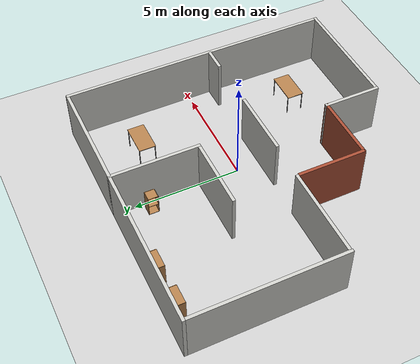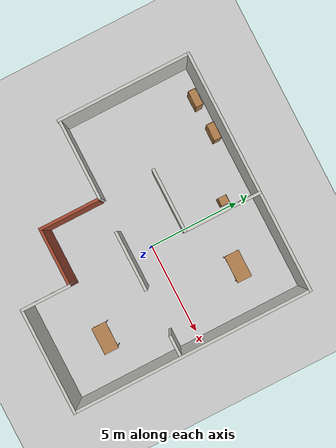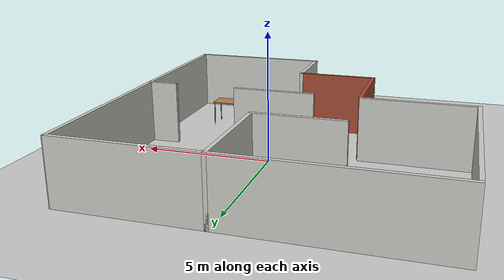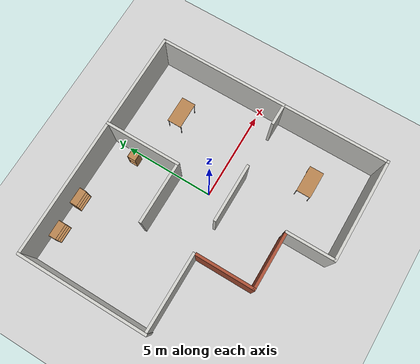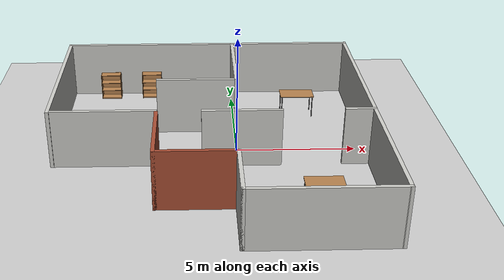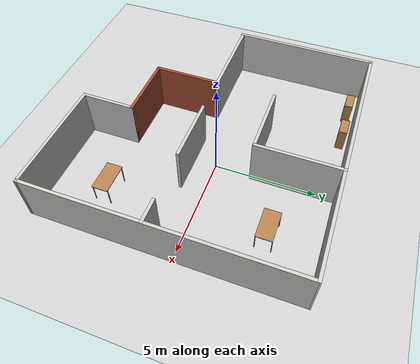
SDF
<sdf version="1.7">
 <world name="default">
  <light name="sun" type="directional">
   <pose>0 0 10 0 -0 0</pose>
   <diffuse>0.8 0.8 0.8 1</diffuse>
   <specular>0.2 0.2 0.2 1</specular>
   <attenuation>
    <range>1000</range>
    <constant>0.9</constant>
    <linear>0.01</linear>
    <quadratic>0.001</quadratic>
   </attenuation>
   <direction>-0.5 0.1 -0.9</direction>
   <spot><inner_angle>0</inner_angle><outer_angle>0</outer_angle><falloff>0</falloff></spot>
  </light>
  <model name="ground_plane">
   <static>1</static>
   <link name="link">
    <collision name="collision">
     <geometry><plane><normal>0 0 1</normal><size>100 100</size></plane></geometry>
     <surface>
      <contact><collide_bitmask>65535</collide_bitmask></contact>
      <friction><ode><mu>100</mu><mu2>50</mu2></ode></friction>
     </surface>
    </collision>
    <visual name="visual">
     <cast_shadows>0</cast_shadows>
     <geometry><plane><normal>0 0 1</normal><size>100 100</size></plane></geometry>
     <material>
      <script><uri>file://media/materials/scripts/gazebo.material</uri><name>Gazebo/Grey</name></script>
     </material>
    </visual>
   </link>
  </model>
  <gravity>0 0 -9.8</gravity>
  <magnetic_field>6e-06 2.3e-05 -4.2e-05</magnetic_field>
  <atmosphere type="adiabatic"/>
  <physics type="ode">
   <max_step_size>0.001</max_step_size>
   <real_time_factor>1</real_time_factor>
   <real_time_update_rate>1000</real_time_update_rate>
  </physics>
  <scene><ambient>0.4 0.4 0.4 1</ambient><background>0.7 0.7 0.7 1</background><shadows>1</shadows></scene>
  <spherical_coordinates>
   <surface_model>EARTH_WGS84</surface_model>
   <latitude_deg>0</latitude_deg>
   <longitude_deg>0</longitude_deg>
   <elevation>0</elevation>
   <heading_deg>0</heading_deg>
  </spherical_coordinates>
  <light name="user_point_light_0" type="point">
   <pose>-5.02294 3.06272 1 0 -0 0</pose>
   <diffuse>0.5 0.5 0.5 1</diffuse>
   <specular>0.1 0.1 0.1 1</specular>
   <attenuation>
    <range>20</range>
    <constant>0.5</constant>
    <linear>0.01</linear>
    <quadratic>0.001</quadratic>
   </attenuation>
   <cast_shadows>0</cast_shadows>
   <direction>0 0 -1</direction>
   <spot><inner_angle>0</inner_angle><outer_angle>0</outer_angle><falloff>0</falloff></spot>
  </light>
  <light name="user_point_light_1" type="point">
   <pose>2.858 2.69851 1 0 -0 0</pose>
   <diffuse>0.5 0.5 0.5 1</diffuse>
   <specular>0.1 0.1 0.1 1</specular>
   <attenuation>
    <range>20</range>
    <constant>0.5</constant>
    <linear>0.01</linear>
    <quadratic>0.001</quadratic>
   </attenuation>
   <cast_shadows>0</cast_shadows>
   <direction>0 0 -1</direction>
   <spot><inner_angle>0</inner_angle><outer_angle>0</outer_angle><falloff>0</falloff></spot>
  </light>
  <light name="user_point_light_2" type="point">
   <pose>-1.99851 -2.16585 1 0 -0 0</pose>
   <diffuse>0.5 0.5 0.5 1</diffuse>
   <specular>0.1 0.1 0.1 1</specular>
   <attenuation>
    <range>20</range>
    <constant>0.5</constant>
    <linear>0.01</linear>
    <quadratic>0.001</quadratic>
   </attenuation>
   <cast_shadows>0</cast_shadows>
   <direction>0 0 -1</direction>
   <spot><inner_angle>0</inner_angle><outer_angle>0</outer_angle><falloff>0</falloff></spot>
  </light>
  <light name="user_point_light_3" type="point">
   <pose>3.04235 -3.95591 1 0 -0 0</pose>
   <diffuse>0.5 0.5 0.5 1</diffuse>
   <specular>0.1 0.1 0.1 1</specular>
   <attenuation>
    <range>20</range>
    <constant>0.5</constant>
    <linear>0.01</linear>
    <quadratic>0.001</quadratic>
   </attenuation>
   <cast_shadows>0</cast_shadows>
   <direction>0 0 -1</direction>
   <spot><inner_angle>0</inner_angle><outer_angle>0</outer_angle><falloff>0</falloff></spot>
  </light>
  <model name="bookshelf">
   <static>1</static>
   <link name="link">
    <inertial><mass>1</mass></inertial>
    <collision name="back">
     <pose>0 0.005 0.6 0 -0 0</pose>
     <geometry><box><size>0.9 0.01 1.2</size></box></geometry>
    </collision>
    <visual name="visual1">
     <pose>0 0.005 0.6 0 -0 0</pose>
     <geometry><box><size>0.9 0.01 1.2</size></box></geometry>
     <material>
      <script><uri>file://media/materials/scripts/gazebo.material</uri><name>Gazebo/Wood</name></script>
     </material>
    </visual>
    <collision name="left_side">
     <pose>0.45 -0.195 0.6 0 -0 0</pose>
     <geometry><box><size>0.02 0.4 1.2</size></box></geometry>
    </collision>
    <visual name="visual2">
     <pose>0.45 -0.195 0.6 0 -0 0</pose>
     <geometry><box><size>0.02 0.4 1.2</size></box></geometry>
     <material>
      <script><uri>file://media/materials/scripts/gazebo.material</uri><name>Gazebo/Wood</name></script>
     </material>
    </visual>
    <collision name="right_side">
     <pose>-0.45 -0.195 0.6 0 -0 0</pose>
     <geometry><box><size>0.02 0.4 1.2</size></box></geometry>
    </collision>
    <visual name="visual3">
     <pose>-0.45 -0.195 0.6 0 -0 0</pose>
     <geometry><box><size>0.02 0.4 1.2</size></box></geometry>
     <material>
      <script><uri>file://media/materials/scripts/gazebo.material</uri><name>Gazebo/Wood</name></script>
     </material>
    </visual>
    <collision name="bottom">
     <pose>0 -0.195 0.03 0 -0 0</pose>
     <geometry><box><size>0.88 0.4 0.06</size></box></geometry>
    </collision>
    <visual name="visual4">
     <pose>0 -0.195 0.03 0 -0 0</pose>
     <geometry><box><size>0.88 0.4 0.06</size></box></geometry>
     <material>
      <script><uri>file://media/materials/scripts/gazebo.material</uri><name>Gazebo/Wood</name></script>
     </material>
    </visual>
    <collision name="top">
     <pose>0 -0.195 1.19 0 -0 0</pose>
     <geometry><box><size>0.88 0.4 0.02</size></box></geometry>
    </collision>
    <visual name="visual5">
     <pose>0 -0.195 1.19 0 -0 0</pose>
     <geometry><box><size>0.88 0.4 0.02</size></box></geometry>
     <material>
      <script><uri>file://media/materials/scripts/gazebo.material</uri><name>Gazebo/Wood</name></script>
     </material>
    </visual>
    <collision name="low_shelf">
     <pose>0 -0.195 0.43 0 -0 0</pose>
     <geometry><box><size>0.88 0.4 0.02</size></box></geometry>
    </collision>
    <visual name="visual6">
     <pose>0 -0.195 0.43 0 -0 0</pose>
     <geometry><box><size>0.88 0.4 0.02</size></box></geometry>
     <material>
      <script><uri>file://media/materials/scripts/gazebo.material</uri><name>Gazebo/Wood</name></script>
     </material>
    </visual>
    <collision name="high_shelf">
     <pose>0 -0.195 0.8 0 -0 0</pose>
     <geometry><box><size>0.88 0.4 0.02</size></box></geometry>
    </collision>
    <visual name="visual7">
     <pose>0 -0.195 0.8 0 -0 0</pose>
     <geometry><box><size>0.88 0.4 0.02</size></box></geometry>
     <material>
      <script><uri>file://media/materials/scripts/gazebo.material</uri><name>Gazebo/Wood</name></script>
     </material>
    </visual>
   </link>
   <pose>-5.69565 5.6431 0 0 -0 0</pose>
  </model>
  <model name="bookshelf_clone">
   <static>1</static>
   <link name="link">
    <inertial><mass>1</mass></inertial>
    <collision name="back">
     <pose>0 0.005 0.6 0 -0 0</pose>
     <geometry><box><size>0.9 0.01 1.2</size></box></geometry>
    </collision>
    <visual name="visual1">
     <pose>0 0.005 0.6 0 -0 0</pose>
     <geometry><box><size>0.9 0.01 1.2</size></box></geometry>
     <material>
      <script><uri>file://media/materials/scripts/gazebo.material</uri><name>Gazebo/Wood</name></script>
     </material>
    </visual>
    <collision name="left_side">
     <pose>0.45 -0.195 0.6 0 -0 0</pose>
     <geometry><box><size>0.02 0.4 1.2</size></box></geometry>
    </collision>
    <visual name="visual2">
     <pose>0.45 -0.195 0.6 0 -0 0</pose>
     <geometry><box><size>0.02 0.4 1.2</size></box></geometry>
     <material>
      <script><uri>file://media/materials/scripts/gazebo.material</uri><name>Gazebo/Wood</name></script>
     </material>
    </visual>
    <collision name="right_side">
     <pose>-0.45 -0.195 0.6 0 -0 0</pose>
     <geometry><box><size>0.02 0.4 1.2</size></box></geometry>
    </collision>
    <visual name="visual3">
     <pose>-0.45 -0.195 0.6 0 -0 0</pose>
     <geometry><box><size>0.02 0.4 1.2</size></box></geometry>
     <material>
      <script><uri>file://media/materials/scripts/gazebo.material</uri><name>Gazebo/Wood</name></script>
     </material>
    </visual>
    <collision name="bottom">
     <pose>0 -0.195 0.03 0 -0 0</pose>
     <geometry><box><size>0.88 0.4 0.06</size></box></geometry>
    </collision>
    <visual name="visual4">
     <pose>0 -0.195 0.03 0 -0 0</pose>
     <geometry><box><size>0.88 0.4 0.06</size></box></geometry>
     <material>
      <script><uri>file://media/materials/scripts/gazebo.material</uri><name>Gazebo/Wood</name></script>
     </material>
    </visual>
    <collision name="top">
     <pose>0 -0.195 1.19 0 -0 0</pose>
     <geometry><box><size>0.88 0.4 0.02</size></box></geometry>
    </collision>
    <visual name="visual5">
     <pose>0 -0.195 1.19 0 -0 0</pose>
     <geometry><box><size>0.88 0.4 0.02</size></box></geometry>
     <material>
      <script><uri>file://media/materials/scripts/gazebo.material</uri><name>Gazebo/Wood</name></script>
     </material>
    </visual>
    <collision name="low_shelf">
     <pose>0 -0.195 0.43 0 -0 0</pose>
     <geometry><box><size>0.88 0.4 0.02</size></box></geometry>
    </collision>
    <visual name="visual6">
     <pose>0 -0.195 0.43 0 -0 0</pose>
     <geometry><box><size>0.88 0.4 0.02</size></box></geometry>
     <material>
      <script><uri>file://media/materials/scripts/gazebo.material</uri><name>Gazebo/Wood</name></script>
     </material>
    </visual>
    <collision name="high_shelf">
     <pose>0 -0.195 0.8 0 -0 0</pose>
     <geometry><box><size>0.88 0.4 0.02</size></box></geometry>
    </collision>
    <visual name="visual7">
     <pose>0 -0.195 0.8 0 -0 0</pose>
     <geometry><box><size>0.88 0.4 0.02</size></box></geometry>
     <material>
      <script><uri>file://media/materials/scripts/gazebo.material</uri><name>Gazebo/Wood</name></script>
     </material>
    </visual>
   </link>
   <pose>-3.76887 5.69778 0 0 -0 0</pose>
  </model>
  <model name="cabinet">
   <static>1</static>
   <link name="cabinet_bottom_plate">
    <inertial>
     <pose>0 0 -1 0 -0 0</pose>
     <inertia><ixx>2.05</ixx><ixy>0</ixy><ixz>0</ixz><iyy>2.05</iyy><iyz>0</iyz><izz>2.05</izz></inertia>
     <mass>25</mass>
    </inertial>
    <collision name="cabinet_bottom_plate_geom">
     <pose>0 0 0.01 0 -0 0</pose>
     <geometry><box><size>0.45 0.45 0.02</size></box></geometry>
    </collision>
    <visual name="cabinet_bottom_plate_geom_visual">
     <pose>0 0 0.01 0 -0 0</pose>
     <geometry><box><size>0.45 0.45 0.02</size></box></geometry>
     <material>
      <script><uri>file://media/materials/scripts/gazebo.material</uri><name>Gazebo/Wood</name></script>
     </material>
    </visual>
    <collision name="cabinet_bottom_plate_geom_cabinet_back_plate">
     <pose>0.235 0 0.51 0 -0 0</pose>
     <geometry><box><size>0.02 0.45 1.02</size></box></geometry>
    </collision>
    <visual name="cabinet_bottom_plate_geom_cabinet_back_plate_visual">
     <pose>0.235 0 0.51 0 -0 0</pose>
     <geometry><box><size>0.02 0.45 1.02</size></box></geometry>
     <material>
      <script><uri>file://media/materials/scripts/gazebo.material</uri><name>Gazebo/Wood</name></script>
     </material>
    </visual>
    <collision name="cabinet_bottom_plate_geom_cabinet_left_plate">
     <pose>0 0.235 0.51 0 -0 0</pose>
     <geometry><box><size>0.45 0.02 1.02</size></box></geometry>
    </collision>
    <visual name="cabinet_bottom_plate_geom_cabinet_left_plate_visual">
     <pose>0 0.235 0.51 0 -0 0</pose>
     <geometry><box><size>0.45 0.02 1.02</size></box></geometry>
     <material>
      <script><uri>file://media/materials/scripts/gazebo.material</uri><name>Gazebo/Wood</name></script>
     </material>
    </visual>
    <collision name="cabinet_bottom_plate_geom_cabinet_middle_plate">
     <pose>0 0 0.51 0 -0 0</pose>
     <geometry><box><size>0.45 0.45 0.02</size></box></geometry>
    </collision>
    <visual name="cabinet_bottom_plate_geom_cabinet_middle_plate_visual">
     <pose>0 0 0.51 0 -0 0</pose>
     <geometry><box><size>0.45 0.45 0.02</size></box></geometry>
     <material>
      <script><uri>file://media/materials/scripts/gazebo.material</uri><name>Gazebo/Wood</name></script>
     </material>
    </visual>
    <collision name="cabinet_bottom_plate_geom_cabinet_right_plate">
     <pose>0 -0.235 0.51 0 -0 0</pose>
     <geometry><box><size>0.45 0.02 1.02</size></box></geometry>
    </collision>
    <visual name="cabinet_bottom_plate_geom_cabinet_right_plate_visual">
     <pose>0 -0.235 0.51 0 -0 0</pose>
     <geometry><box><size>0.45 0.02 1.02</size></box></geometry>
     <material>
      <script><uri>file://media/materials/scripts/gazebo.material</uri><name>Gazebo/Wood</name></script>
     </material>
    </visual>
    <collision name="cabinet_bottom_plate_geom_cabinet_top_plate">
     <pose>0 0 1.01 0 -0 0</pose>
     <geometry><box><size>0.45 0.45 0.02</size></box></geometry>
    </collision>
    <visual name="cabinet_bottom_plate_geom_cabinet_top_plate_visual">
     <pose>0 0 1.01 0 -0 0</pose>
     <geometry><box><size>0.45 0.45 0.02</size></box></geometry>
     <material>
      <script><uri>file://media/materials/scripts/gazebo.material</uri><name>Gazebo/Wood</name></script>
     </material>
    </visual>
   </link>
   <pose>-0.422398 4.35117 0 0 -0 0</pose>
  </model>
  <model name="table">
   <static>1</static>
   <link name="link">
    <collision name="surface">
     <pose>0 0 1 0 -0 0</pose>
     <geometry><box><size>1.5 0.8 0.03</size></box></geometry>
     <surface><friction><ode><mu>0.6</mu><mu2>0.6</mu2></ode></friction></surface>
    </collision>
    <visual name="visual1">
     <pose>0 0 1 0 -0 0</pose>
     <geometry><box><size>1.5 0.8 0.03</size></box></geometry>
     <material>
      <script><uri>file://media/materials/scripts/gazebo.material</uri><name>Gazebo/Wood</name></script>
     </material>
    </visual>
    <collision name="front_left_leg">
     <pose>0.68 0.38 0.5 0 -0 0</pose>
     <geometry><cylinder><radius>0.02</radius><length>1</length></cylinder></geometry>
    </collision>
    <visual name="front_left_leg">
     <pose>0.68 0.38 0.5 0 -0 0</pose>
     <geometry><cylinder><radius>0.02</radius><length>1</length></cylinder></geometry>
     <material>
      <script><uri>file://media/materials/scripts/gazebo.material</uri><name>Gazebo/Grey</name></script>
     </material>
    </visual>
    <collision name="front_right_leg">
     <pose>0.68 -0.38 0.5 0 -0 0</pose>
     <geometry><cylinder><radius>0.02</radius><length>1</length></cylinder></geometry>
    </collision>
    <visual name="front_right_leg">
     <pose>0.68 -0.38 0.5 0 -0 0</pose>
     <geometry><cylinder><radius>0.02</radius><length>1</length></cylinder></geometry>
     <material>
      <script><uri>file://media/materials/scripts/gazebo.material</uri><name>Gazebo/Grey</name></script>
     </material>
    </visual>
    <collision name="back_right_leg">
     <pose>-0.68 -0.38 0.5 0 -0 0</pose>
     <geometry><cylinder><radius>0.02</radius><length>1</length></cylinder></geometry>
    </collision>
    <visual name="back_right_leg">
     <pose>-0.68 -0.38 0.5 0 -0 0</pose>
     <geometry><cylinder><radius>0.02</radius><length>1</length></cylinder></geometry>
     <material>
      <script><uri>file://media/materials/scripts/gazebo.material</uri><name>Gazebo/Grey</name></script>
     </material>
    </visual>
    <collision name="back_left_leg">
     <pose>-0.68 0.38 0.5 0 -0 0</pose>
     <geometry><cylinder><radius>0.02</radius><length>1</length></cylinder></geometry>
    </collision>
    <visual name="back_left_leg">
     <pose>-0.68 0.38 0.5 0 -0 0</pose>
     <geometry><cylinder><radius>0.02</radius><length>1</length></cylinder></geometry>
     <material>
      <script><uri>file://media/materials/scripts/gazebo.material</uri><name>Gazebo/Grey</name></script>
     </material>
    </visual>
   </link>
   <pose>3.04943 -4.2417 0 0 -0 0</pose>
  </model>
  <model name="table_0">
   <static>1</static>
   <link name="link">
    <collision name="surface">
     <pose>0 0 1 0 -0 0</pose>
     <geometry><box><size>1.5 0.8 0.03</size></box></geometry>
     <surface><friction><ode><mu>0.6</mu><mu2>0.6</mu2></ode></friction></surface>
    </collision>
    <visual name="visual1">
     <pose>0 0 1 0 -0 0</pose>
     <geometry><box><size>1.5 0.8 0.03</size></box></geometry>
     <material>
      <script><uri>file://media/materials/scripts/gazebo.material</uri><name>Gazebo/Wood</name></script>
     </material>
    </visual>
    <collision name="front_left_leg">
     <pose>0.68 0.38 0.5 0 -0 0</pose>
     <geometry><cylinder><radius>0.02</radius><length>1</length></cylinder></geometry>
    </collision>
    <visual name="front_left_leg">
     <pose>0.68 0.38 0.5 0 -0 0</pose>
     <geometry><cylinder><radius>0.02</radius><length>1</length></cylinder></geometry>
     <material>
      <script><uri>file://media/materials/scripts/gazebo.material</uri><name>Gazebo/Grey</name></script>
     </material>
    </visual>
    <collision name="front_right_leg">
     <pose>0.68 -0.38 0.5 0 -0 0</pose>
     <geometry><cylinder><radius>0.02</radius><length>1</length></cylinder></geometry>
    </collision>
    <visual name="front_right_leg">
     <pose>0.68 -0.38 0.5 0 -0 0</pose>
     <geometry><cylinder><radius>0.02</radius><length>1</length></cylinder></geometry>
     <material>
      <script><uri>file://media/materials/scripts/gazebo.material</uri><name>Gazebo/Grey</name></script>
     </material>
    </visual>
    <collision name="back_right_leg">
     <pose>-0.68 -0.38 0.5 0 -0 0</pose>
     <geometry><cylinder><radius>0.02</radius><length>1</length></cylinder></geometry>
    </collision>
    <visual name="back_right_leg">
     <pose>-0.68 -0.38 0.5 0 -0 0</pose>
     <geometry><cylinder><radius>0.02</radius><length>1</length></cylinder></geometry>
     <material>
      <script><uri>file://media/materials/scripts/gazebo.material</uri><name>Gazebo/Grey</name></script>
     </material>
    </visual>
    <collision name="back_left_leg">
     <pose>-0.68 0.38 0.5 0 -0 0</pose>
     <geometry><cylinder><radius>0.02</radius><length>1</length></cylinder></geometry>
    </collision>
    <visual name="back_left_leg">
     <pose>-0.68 0.38 0.5 0 -0 0</pose>
     <geometry><cylinder><radius>0.02</radius><length>1</length></cylinder></geometry>
     <material>
      <script><uri>file://media/materials/scripts/gazebo.material</uri><name>Gazebo/Grey</name></script>
     </material>
    </visual>
   </link>
   <pose>2.90183 3.46121 0 0 -0 0</pose>
  </model>
  <model name="robot_world">
   <link name="Wall_0">
    <pose>-0.568104 2.36 0 0 -0 0</pose>
    <visual name="Wall_0_Visual">
     <pose>0 0 1.25 0 -0 0</pose>
     <geometry><box><size>3.5 0.15 2.5</size></box></geometry>
     <material>
      <script><uri>file://media/materials/scripts/gazebo.material</uri><name>Gazebo/CeilingTiled</name></script>
      <ambient>0.760784 0.662745 0.627451 1</ambient>
      <shader type="pixel"/>
     </material>
     <meta><layer>0</layer></meta>
    </visual>
    <collision name="Wall_0_Collision">
     <pose>0 0 1.25 0 -0 0</pose>
     <geometry><box><size>3.5 0.15 2.5</size></box></geometry>
     <surface>
      <friction>
       <ode><mu>1</mu><mu2>1</mu2><fdir1>0 0 0</fdir1><slip1>0</slip1><slip2>0</slip2></ode>
       <torsional>
        <coefficient>1</coefficient>
        <patch_radius>0</patch_radius>
        <surface_radius>0</surface_radius>
        <use_patch_radius>1</use_patch_radius>
        <ode><slip>0</slip></ode>
       </torsional>
      </friction>
      <bounce><restitution_coefficient>0</restitution_coefficient><threshold>1e+06</threshold></bounce>
      <contact>
       <collide_without_contact>0</collide_without_contact>
       <collide_without_contact_bitmask>1</collide_without_contact_bitmask>
       <collide_bitmask>1</collide_bitmask>
       <ode>
        <soft_cfm>0</soft_cfm>
        <soft_erp>0.2</soft_erp>
        <kp>1e+13</kp>
        <kd>1</kd>
        <max_vel>0.01</max_vel>
        <min_depth>0</min_depth>
       </ode>
       <bullet>
        <split_impulse>1</split_impulse>
        <split_impulse_penetration_threshold>-0.01</split_impulse_penetration_threshold>
        <soft_cfm>0</soft_cfm>
        <soft_erp>0.2</soft_erp>
        <kp>1e+13</kp>
        <kd>1</kd>
       </bullet>
      </contact>
     </surface>
    </collision>
   </link>
   <link name="Wall_1">
    <pose>1.1069 4.41 0 0 -0 1.5708</pose>
    <visual name="Wall_1_Visual">
     <pose>0 0 1.25 0 -0 0</pose>
     <geometry><box><size>4.25 0.15 2.5</size></box></geometry>
     <material>
      <script><uri>file://media/materials/scripts/gazebo.material</uri><name>Gazebo/CeilingTiled</name></script>
      <ambient>0.760784 0.662745 0.627451 1</ambient>
      <shader type="pixel"/>
     </material>
     <meta><layer>0</layer></meta>
    </visual>
    <collision name="Wall_1_Collision">
     <pose>0 0 1.25 0 -0 0</pose>
     <geometry><box><size>4.25 0.15 2.5</size></box></geometry>
     <surface>
      <friction>
       <ode><mu>1</mu><mu2>1</mu2><fdir1>0 0 0</fdir1><slip1>0</slip1><slip2>0</slip2></ode>
       <torsional>
        <coefficient>1</coefficient>
        <patch_radius>0</patch_radius>
        <surface_radius>0</surface_radius>
        <use_patch_radius>1</use_patch_radius>
        <ode><slip>0</slip></ode>
       </torsional>
      </friction>
      <bounce><restitution_coefficient>0</restitution_coefficient><threshold>1e+06</threshold></bounce>
      <contact>
       <collide_without_contact>0</collide_without_contact>
       <collide_without_contact_bitmask>1</collide_without_contact_bitmask>
       <collide_bitmask>1</collide_bitmask>
       <ode>
        <soft_cfm>0</soft_cfm>
        <soft_erp>0.2</soft_erp>
        <kp>1e+13</kp>
        <kd>1</kd>
        <max_vel>0.01</max_vel>
        <min_depth>0</min_depth>
       </ode>
       <bullet>
        <split_impulse>1</split_impulse>
        <split_impulse_penetration_threshold>-0.01</split_impulse_penetration_threshold>
        <soft_cfm>0</soft_cfm>
        <soft_erp>0.2</soft_erp>
        <kp>1e+13</kp>
        <kd>1</kd>
       </bullet>
      </contact>
     </surface>
    </collision>
   </link>
   <link name="Wall_10">
    <pose>0.892896 -5.16 0 0 0 -1.5708</pose>
    <visual name="Wall_10_Visual">
     <pose>0 0 1.25 0 -0 0</pose>
     <geometry><box><size>2.75 0.15 2.5</size></box></geometry>
     <material>
      <script><uri>file://media/materials/scripts/gazebo.material</uri><name>Gazebo/CeilingTiled</name></script>
      <ambient>0.760784 0.662745 0.627451 1</ambient>
      <shader type="pixel"/>
     </material>
     <meta><layer>0</layer></meta>
    </visual>
    <collision name="Wall_10_Collision">
     <pose>0 0 1.25 0 -0 0</pose>
     <geometry><box><size>2.75 0.15 2.5</size></box></geometry>
     <surface>
      <friction>
       <ode><mu>1</mu><mu2>1</mu2><fdir1>0 0 0</fdir1><slip1>0</slip1><slip2>0</slip2></ode>
       <torsional>
        <coefficient>1</coefficient>
        <patch_radius>0</patch_radius>
        <surface_radius>0</surface_radius>
        <use_patch_radius>1</use_patch_radius>
        <ode><slip>0</slip></ode>
       </torsional>
      </friction>
      <bounce><restitution_coefficient>0</restitution_coefficient><threshold>1e+06</threshold></bounce>
      <contact>
       <collide_without_contact>0</collide_without_contact>
       <collide_without_contact_bitmask>1</collide_without_contact_bitmask>
       <collide_bitmask>1</collide_bitmask>
       <ode>
        <soft_cfm>0</soft_cfm>
        <soft_erp>0.2</soft_erp>
        <kp>1e+13</kp>
        <kd>1</kd>
        <max_vel>0.01</max_vel>
        <min_depth>0</min_depth>
       </ode>
       <bullet>
        <split_impulse>1</split_impulse>
        <split_impulse_penetration_threshold>-0.01</split_impulse_penetration_threshold>
        <soft_cfm>0</soft_cfm>
        <soft_erp>0.2</soft_erp>
        <kp>1e+13</kp>
        <kd>1</kd>
       </bullet>
      </contact>
     </surface>
    </collision>
   </link>
   <link name="Wall_11">
    <pose>3.6929 -6.46 0 0 -0 0</pose>
    <visual name="Wall_11_Visual">
     <pose>0 0 1.25 0 -0 0</pose>
     <geometry><box><size>5.75 0.15 2.5</size></box></geometry>
     <material>
      <script><uri>file://media/materials/scripts/gazebo.material</uri><name>Gazebo/CeilingTiled</name></script>
      <ambient>0.760784 0.662745 0.627451 1</ambient>
      <shader type="pixel"/>
     </material>
     <meta><layer>0</layer></meta>
    </visual>
    <collision name="Wall_11_Collision">
     <pose>0 0 1.25 0 -0 0</pose>
     <geometry><box><size>5.75 0.15 2.5</size></box></geometry>
     <surface>
      <friction>
       <ode><mu>1</mu><mu2>1</mu2><fdir1>0 0 0</fdir1><slip1>0</slip1><slip2>0</slip2></ode>
       <torsional>
        <coefficient>1</coefficient>
        <patch_radius>0</patch_radius>
        <surface_radius>0</surface_radius>
        <use_patch_radius>1</use_patch_radius>
        <ode><slip>0</slip></ode>
       </torsional>
      </friction>
      <bounce><restitution_coefficient>0</restitution_coefficient><threshold>1e+06</threshold></bounce>
      <contact>
       <collide_without_contact>0</collide_without_contact>
       <collide_without_contact_bitmask>1</collide_without_contact_bitmask>
       <collide_bitmask>1</collide_bitmask>
       <ode>
        <soft_cfm>0</soft_cfm>
        <soft_erp>0.2</soft_erp>
        <kp>1e+13</kp>
        <kd>1</kd>
        <max_vel>0.01</max_vel>
        <min_depth>0</min_depth>
       </ode>
       <bullet>
        <split_impulse>1</split_impulse>
        <split_impulse_penetration_threshold>-0.01</split_impulse_penetration_threshold>
        <soft_cfm>0</soft_cfm>
        <soft_erp>0.2</soft_erp>
        <kp>1e+13</kp>
        <kd>1</kd>
       </bullet>
      </contact>
     </surface>
    </collision>
   </link>
   <link name="Wall_14">
    <pose>3.7819 6.46 0 0 -0 0</pose>
    <visual name="Wall_14_Visual">
     <pose>0 0 1.25 0 -0 0</pose>
     <geometry><box><size>5.5 0.15 2.5</size></box></geometry>
     <material>
      <script><uri>file://media/materials/scripts/gazebo.material</uri><name>Gazebo/CeilingTiled</name></script>
      <ambient>0.760784 0.662745 0.627451 1</ambient>
      <shader type="pixel"/>
     </material>
     <meta><layer>0</layer></meta>
    </visual>
    <collision name="Wall_14_Collision">
     <pose>0 0 1.25 0 -0 0</pose>
     <geometry><box><size>5.5 0.15 2.5</size></box></geometry>
     <surface>
      <friction>
       <ode><mu>1</mu><mu2>1</mu2><fdir1>0 0 0</fdir1><slip1>0</slip1><slip2>0</slip2></ode>
       <torsional>
        <coefficient>1</coefficient>
        <patch_radius>0</patch_radius>
        <surface_radius>0</surface_radius>
        <use_patch_radius>1</use_patch_radius>
        <ode><slip>0</slip></ode>
       </torsional>
      </friction>
      <bounce><restitution_coefficient>0</restitution_coefficient><threshold>1e+06</threshold></bounce>
      <contact>
       <collide_without_contact>0</collide_without_contact>
       <collide_without_contact_bitmask>1</collide_without_contact_bitmask>
       <collide_bitmask>1</collide_bitmask>
       <ode>
        <soft_cfm>0</soft_cfm>
        <soft_erp>0.2</soft_erp>
        <kp>1e+13</kp>
        <kd>1</kd>
        <max_vel>0.01</max_vel>
        <min_depth>0</min_depth>
       </ode>
       <bullet>
        <split_impulse>1</split_impulse>
        <split_impulse_penetration_threshold>-0.01</split_impulse_penetration_threshold>
        <soft_cfm>0</soft_cfm>
        <soft_erp>0.2</soft_erp>
        <kp>1e+13</kp>
        <kd>1</kd>
       </bullet>
      </contact>
     </surface>
    </collision>
   </link>
   <link name="Wall_15">
    <pose>6.4749 0 0 0 0 -1.56801</pose>
    <visual name="Wall_15_Visual">
     <pose>0 0 1.25 0 -0 0</pose>
     <geometry><box><size>13.0698 0.15 2.5</size></box></geometry>
     <material>
      <script><uri>file://media/materials/scripts/gazebo.material</uri><name>Gazebo/CeilingTiled</name></script>
      <ambient>0.760784 0.662745 0.627451 1</ambient>
      <shader type="pixel"/>
     </material>
     <meta><layer>0</layer></meta>
    </visual>
    <collision name="Wall_15_Collision">
     <pose>0 0 1.25 0 -0 0</pose>
     <geometry><box><size>13.0698 0.15 2.5</size></box></geometry>
     <surface>
      <friction>
       <ode><mu>1</mu><mu2>1</mu2><fdir1>0 0 0</fdir1><slip1>0</slip1><slip2>0</slip2></ode>
       <torsional>
        <coefficient>1</coefficient>
        <patch_radius>0</patch_radius>
        <surface_radius>0</surface_radius>
        <use_patch_radius>1</use_patch_radius>
        <ode><slip>0</slip></ode>
       </torsional>
      </friction>
      <bounce><restitution_coefficient>0</restitution_coefficient><threshold>1e+06</threshold></bounce>
      <contact>
       <collide_without_contact>0</collide_without_contact>
       <collide_without_contact_bitmask>1</collide_without_contact_bitmask>
       <collide_bitmask>1</collide_bitmask>
       <ode>
        <soft_cfm>0</soft_cfm>
        <soft_erp>0.2</soft_erp>
        <kp>1e+13</kp>
        <kd>1</kd>
        <max_vel>0.01</max_vel>
        <min_depth>0</min_depth>
       </ode>
       <bullet>
        <split_impulse>1</split_impulse>
        <split_impulse_penetration_threshold>-0.01</split_impulse_penetration_threshold>
        <soft_cfm>0</soft_cfm>
        <soft_erp>0.2</soft_erp>
        <kp>1e+13</kp>
        <kd>1</kd>
       </bullet>
      </contact>
     </surface>
    </collision>
   </link>
   <link name="Wall_2">
    <pose>-2.6931 6.46 0 0 -0 3.14159</pose>
    <visual name="Wall_2_Visual">
     <pose>0 0 1.25 0 -0 0</pose>
     <geometry><box><size>7.75 0.15 2.5</size></box></geometry>
     <material>
      <script><uri>file://media/materials/scripts/gazebo.material</uri><name>Gazebo/CeilingTiled</name></script>
      <ambient>0.760784 0.662745 0.627451 1</ambient>
      <shader type="pixel"/>
     </material>
     <meta><layer>0</layer></meta>
    </visual>
    <collision name="Wall_2_Collision">
     <pose>0 0 1.25 0 -0 0</pose>
     <geometry><box><size>7.75 0.15 2.5</size></box></geometry>
     <surface>
      <friction>
       <ode><mu>1</mu><mu2>1</mu2><fdir1>0 0 0</fdir1><slip1>0</slip1><slip2>0</slip2></ode>
       <torsional>
        <coefficient>1</coefficient>
        <patch_radius>0</patch_radius>
        <surface_radius>0</surface_radius>
        <use_patch_radius>1</use_patch_radius>
        <ode><slip>0</slip></ode>
       </torsional>
      </friction>
      <bounce><restitution_coefficient>0</restitution_coefficient><threshold>1e+06</threshold></bounce>
      <contact>
       <collide_without_contact>0</collide_without_contact>
       <collide_without_contact_bitmask>1</collide_without_contact_bitmask>
       <collide_bitmask>1</collide_bitmask>
       <ode>
        <soft_cfm>0</soft_cfm>
        <soft_erp>0.2</soft_erp>
        <kp>1e+13</kp>
        <kd>1</kd>
        <max_vel>0.01</max_vel>
        <min_depth>0</min_depth>
       </ode>
       <bullet>
        <split_impulse>1</split_impulse>
        <split_impulse_penetration_threshold>-0.01</split_impulse_penetration_threshold>
        <soft_cfm>0</soft_cfm>
        <soft_erp>0.2</soft_erp>
        <kp>1e+13</kp>
        <kd>1</kd>
       </bullet>
      </contact>
     </surface>
    </collision>
   </link>
   <link name="Wall_26">
    <pose>1.2049 -0.653 0 0 -0 0</pose>
    <visual name="Wall_26_Visual">
     <pose>0 0 1.25 0 -0 0</pose>
     <geometry><box><size>3.25 0.15 2.5</size></box></geometry>
     <material>
      <script><uri>file://media/materials/scripts/gazebo.material</uri><name>Gazebo/CeilingTiled</name></script>
      <ambient>0.760784 0.662745 0.627451 1</ambient>
      <shader type="pixel"/>
     </material>
     <meta><layer>0</layer></meta>
    </visual>
    <collision name="Wall_26_Collision">
     <pose>0 0 1.25 0 -0 0</pose>
     <geometry><box><size>3.25 0.15 2.5</size></box></geometry>
     <surface>
      <friction>
       <ode><mu>1</mu><mu2>1</mu2><fdir1>0 0 0</fdir1><slip1>0</slip1><slip2>0</slip2></ode>
       <torsional>
        <coefficient>1</coefficient>
        <patch_radius>0</patch_radius>
        <surface_radius>0</surface_radius>
        <use_patch_radius>1</use_patch_radius>
        <ode><slip>0</slip></ode>
       </torsional>
      </friction>
      <bounce><restitution_coefficient>0</restitution_coefficient><threshold>1e+06</threshold></bounce>
      <contact>
       <collide_without_contact>0</collide_without_contact>
       <collide_without_contact_bitmask>1</collide_without_contact_bitmask>
       <collide_bitmask>1</collide_bitmask>
       <ode>
        <soft_cfm>0</soft_cfm>
        <soft_erp>0.2</soft_erp>
        <kp>1e+13</kp>
        <kd>1</kd>
        <max_vel>0.01</max_vel>
        <min_depth>0</min_depth>
       </ode>
       <bullet>
        <split_impulse>1</split_impulse>
        <split_impulse_penetration_threshold>-0.01</split_impulse_penetration_threshold>
        <soft_cfm>0</soft_cfm>
        <soft_erp>0.2</soft_erp>
        <kp>1e+13</kp>
        <kd>1</kd>
       </bullet>
      </contact>
     </surface>
    </collision>
   </link>
   <link name="Wall_3">
    <pose>-6.4931 2.91 0 0 0 -1.5708</pose>
    <visual name="Wall_3_Visual">
     <pose>0 0 1.25 0 -0 0</pose>
     <geometry><box><size>7.25 0.15 2.5</size></box></geometry>
     <material>
      <script><uri>file://media/materials/scripts/gazebo.material</uri><name>Gazebo/CeilingTiled</name></script>
      <ambient>0.760784 0.662745 0.627451 1</ambient>
      <shader type="pixel"/>
     </material>
     <meta><layer>0</layer></meta>
    </visual>
    <collision name="Wall_3_Collision">
     <pose>0 0 1.25 0 -0 0</pose>
     <geometry><box><size>7.25 0.15 2.5</size></box></geometry>
     <surface>
      <friction>
       <ode><mu>1</mu><mu2>1</mu2><fdir1>0 0 0</fdir1><slip1>0</slip1><slip2>0</slip2></ode>
       <torsional>
        <coefficient>1</coefficient>
        <patch_radius>0</patch_radius>
        <surface_radius>0</surface_radius>
        <use_patch_radius>1</use_patch_radius>
        <ode><slip>0</slip></ode>
       </torsional>
      </friction>
      <bounce><restitution_coefficient>0</restitution_coefficient><threshold>1e+06</threshold></bounce>
      <contact>
       <collide_without_contact>0</collide_without_contact>
       <collide_without_contact_bitmask>1</collide_without_contact_bitmask>
       <collide_bitmask>1</collide_bitmask>
       <ode>
        <soft_cfm>0</soft_cfm>
        <soft_erp>0.2</soft_erp>
        <kp>1e+13</kp>
        <kd>1</kd>
        <max_vel>0.01</max_vel>
        <min_depth>0</min_depth>
       </ode>
       <bullet>
        <split_impulse>1</split_impulse>
        <split_impulse_penetration_threshold>-0.01</split_impulse_penetration_threshold>
        <soft_cfm>0</soft_cfm>
        <soft_erp>0.2</soft_erp>
        <kp>1e+13</kp>
        <kd>1</kd>
       </bullet>
      </contact>
     </surface>
    </collision>
   </link>
   <link name="Wall_31">
    <pose>5.9239 -0.627 0 0 -0 0</pose>
    <visual name="Wall_31_Visual">
     <pose>0 0 1.25 0 -0 0</pose>
     <geometry><box><size>1.25 0.15 2.5</size></box></geometry>
     <material>
      <script><uri>file://media/materials/scripts/gazebo.material</uri><name>Gazebo/CeilingTiled</name></script>
      <ambient>0.760784 0.662745 0.627451 1</ambient>
      <shader type="pixel"/>
     </material>
     <meta><layer>0</layer></meta>
    </visual>
    <collision name="Wall_31_Collision">
     <pose>0 0 1.25 0 -0 0</pose>
     <geometry><box><size>1.25 0.15 2.5</size></box></geometry>
     <surface>
      <friction>
       <ode><mu>1</mu><mu2>1</mu2><fdir1>0 0 0</fdir1><slip1>0</slip1><slip2>0</slip2></ode>
       <torsional>
        <coefficient>1</coefficient>
        <patch_radius>0</patch_radius>
        <surface_radius>0</surface_radius>
        <use_patch_radius>1</use_patch_radius>
        <ode><slip>0</slip></ode>
       </torsional>
      </friction>
      <bounce><restitution_coefficient>0</restitution_coefficient><threshold>1e+06</threshold></bounce>
      <contact>
       <collide_without_contact>0</collide_without_contact>
       <collide_without_contact_bitmask>1</collide_without_contact_bitmask>
       <collide_bitmask>1</collide_bitmask>
       <ode>
        <soft_cfm>0</soft_cfm>
        <soft_erp>0.2</soft_erp>
        <kp>1e+13</kp>
        <kd>1</kd>
        <max_vel>0.01</max_vel>
        <min_depth>0</min_depth>
       </ode>
       <bullet>
        <split_impulse>1</split_impulse>
        <split_impulse_penetration_threshold>-0.01</split_impulse_penetration_threshold>
        <soft_cfm>0</soft_cfm>
        <soft_erp>0.2</soft_erp>
        <kp>1e+13</kp>
        <kd>1</kd>
       </bullet>
      </contact>
     </surface>
    </collision>
   </link>
   <link name="Wall_6_clone">
    <pose>-4.3053 -0.607442 0 0 -0 0</pose>
    <inertial>
     <mass>1</mass>
     <pose>-0.1 0 0 0 -0 0</pose>
     <inertia><ixx>1</ixx><ixy>0</ixy><ixz>0</ixz><iyy>1</iyy><iyz>0</iyz><izz>1</izz></inertia>
    </inertial>
    <visual name="Wall_6_Visual">
     <pose>0 0 1.25 0 -0 0</pose>
     <geometry><box><size>4.25 0.15 2.5</size></box></geometry>
     <material>
      <script><uri>file://media/materials/scripts/gazebo.material</uri><name>Gazebo/CeilingTiled</name></script>
      <ambient>0.761 0.663 0.627 1</ambient>
      <shader type="pixel"><normal_map>__default__</normal_map></shader>
      <diffuse>1 1 1 1</diffuse>
      <specular>0 0 0 1</specular>
      <emissive>0 0 0 1</emissive>
     </material>
     <meta><layer>0</layer></meta>
    </visual>
    <collision name="Wall_6_Collision">
     <pose>0 0 1.25 0 -0 0</pose>
     <geometry><box><size>4.25 0.15 2.5</size></box></geometry>
     <surface>
      <friction>
       <ode><mu>1</mu><mu2>1</mu2><fdir1>0 0 0</fdir1><slip1>0</slip1><slip2>0</slip2></ode>
       <torsional>
        <coefficient>1</coefficient>
        <patch_radius>0</patch_radius>
        <surface_radius>0</surface_radius>
        <use_patch_radius>1</use_patch_radius>
        <ode><slip>0</slip></ode>
       </torsional>
      </friction>
      <bounce><restitution_coefficient>0</restitution_coefficient><threshold>1e+06</threshold></bounce>
      <contact>
       <collide_without_contact>0</collide_without_contact>
       <collide_without_contact_bitmask>1</collide_without_contact_bitmask>
       <collide_bitmask>1</collide_bitmask>
       <ode>
        <soft_cfm>0</soft_cfm>
        <soft_erp>0.2</soft_erp>
        <kp>1e+13</kp>
        <kd>1</kd>
        <max_vel>0.01</max_vel>
        <min_depth>0</min_depth>
       </ode>
       <bullet>
        <split_impulse>1</split_impulse>
        <split_impulse_penetration_threshold>-0.01</split_impulse_penetration_threshold>
        <soft_cfm>0</soft_cfm>
        <soft_erp>0.2</soft_erp>
        <kp>1e+13</kp>
        <kd>1</kd>
       </bullet>
      </contact>
     </surface>
    </collision>
   </link>
   <link name="Wall_8">
    <pose>-2.2071 -2.31 0 0 0 -1.5708</pose>
    <visual name="Wall_8_Visual">
     <pose>0 0 1.25 0 -0 0</pose>
     <geometry><box><size>3.25 0.15 2.5</size></box></geometry>
     <material>
      <script><uri>file://media/materials/scripts/gazebo.material</uri><name>Gazebo/Bricks</name></script>
      <ambient>0.760784 0.662745 0.627451 1</ambient>
      <shader type="pixel"/>
     </material>
     <meta><layer>0</layer></meta>
    </visual>
    <collision name="Wall_8_Collision">
     <pose>0 0 1.25 0 -0 0</pose>
     <geometry><box><size>3.25 0.15 2.5</size></box></geometry>
     <surface>
      <friction>
       <ode><mu>1</mu><mu2>1</mu2><fdir1>0 0 0</fdir1><slip1>0</slip1><slip2>0</slip2></ode>
       <torsional>
        <coefficient>1</coefficient>
        <patch_radius>0</patch_radius>
        <surface_radius>0</surface_radius>
        <use_patch_radius>1</use_patch_radius>
        <ode><slip>0</slip></ode>
       </torsional>
      </friction>
      <bounce><restitution_coefficient>0</restitution_coefficient><threshold>1e+06</threshold></bounce>
      <contact>
       <collide_without_contact>0</collide_without_contact>
       <collide_without_contact_bitmask>1</collide_without_contact_bitmask>
       <collide_bitmask>1</collide_bitmask>
       <ode>
        <soft_cfm>0</soft_cfm>
        <soft_erp>0.2</soft_erp>
        <kp>1e+13</kp>
        <kd>1</kd>
        <max_vel>0.01</max_vel>
        <min_depth>0</min_depth>
       </ode>
       <bullet>
        <split_impulse>1</split_impulse>
        <split_impulse_penetration_threshold>-0.01</split_impulse_penetration_threshold>
        <soft_cfm>0</soft_cfm>
        <soft_erp>0.2</soft_erp>
        <kp>1e+13</kp>
        <kd>1</kd>
       </bullet>
      </contact>
     </surface>
    </collision>
   </link>
   <link name="Wall_9">
    <pose>-0.657104 -3.86 0 0 -0 0</pose>
    <visual name="Wall_9_Visual">
     <pose>0 0 1.25 0 -0 0</pose>
     <geometry><box><size>3.25 0.15 2.5</size></box></geometry>
     <material>
      <script><uri>file://media/materials/scripts/gazebo.material</uri><name>Gazebo/Bricks</name></script>
      <ambient>0.760784 0.662745 0.627451 1</ambient>
      <shader type="pixel"/>
     </material>
     <meta><layer>0</layer></meta>
    </visual>
    <collision name="Wall_9_Collision">
     <pose>0 0 1.25 0 -0 0</pose>
     <geometry><box><size>3.25 0.15 2.5</size></box></geometry>
     <surface>
      <friction>
       <ode><mu>1</mu><mu2>1</mu2><fdir1>0 0 0</fdir1><slip1>0</slip1><slip2>0</slip2></ode>
       <torsional>
        <coefficient>1</coefficient>
        <patch_radius>0</patch_radius>
        <surface_radius>0</surface_radius>
        <use_patch_radius>1</use_patch_radius>
        <ode><slip>0</slip></ode>
       </torsional>
      </friction>
      <bounce><restitution_coefficient>0</restitution_coefficient><threshold>1e+06</threshold></bounce>
      <contact>
       <collide_without_contact>0</collide_without_contact>
       <collide_without_contact_bitmask>1</collide_without_contact_bitmask>
       <collide_bitmask>1</collide_bitmask>
       <ode>
        <soft_cfm>0</soft_cfm>
        <soft_erp>0.2</soft_erp>
        <kp>1e+13</kp>
        <kd>1</kd>
        <max_vel>0.01</max_vel>
        <min_depth>0</min_depth>
       </ode>
       <bullet>
        <split_impulse>1</split_impulse>
        <split_impulse_penetration_threshold>-0.01</split_impulse_penetration_threshold>
        <soft_cfm>0</soft_cfm>
        <soft_erp>0.2</soft_erp>
        <kp>1e+13</kp>
        <kd>1</kd>
       </bullet>
      </contact>
     </surface>
    </collision>
   </link>
   <static>1</static>
   <pose>-1.0549 -0.518 0 0 -0 0</pose>
  </model>
 </world>
</sdf>
